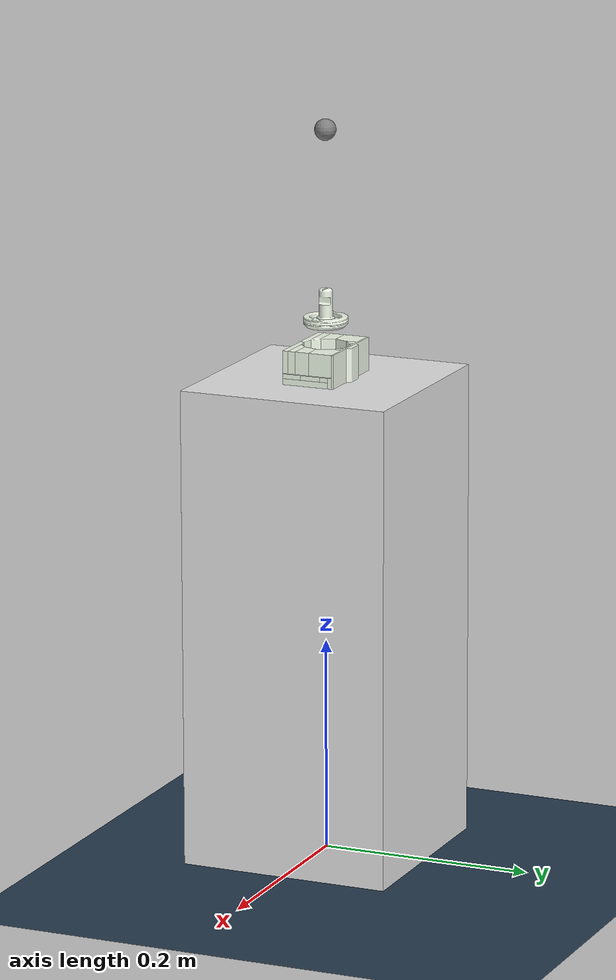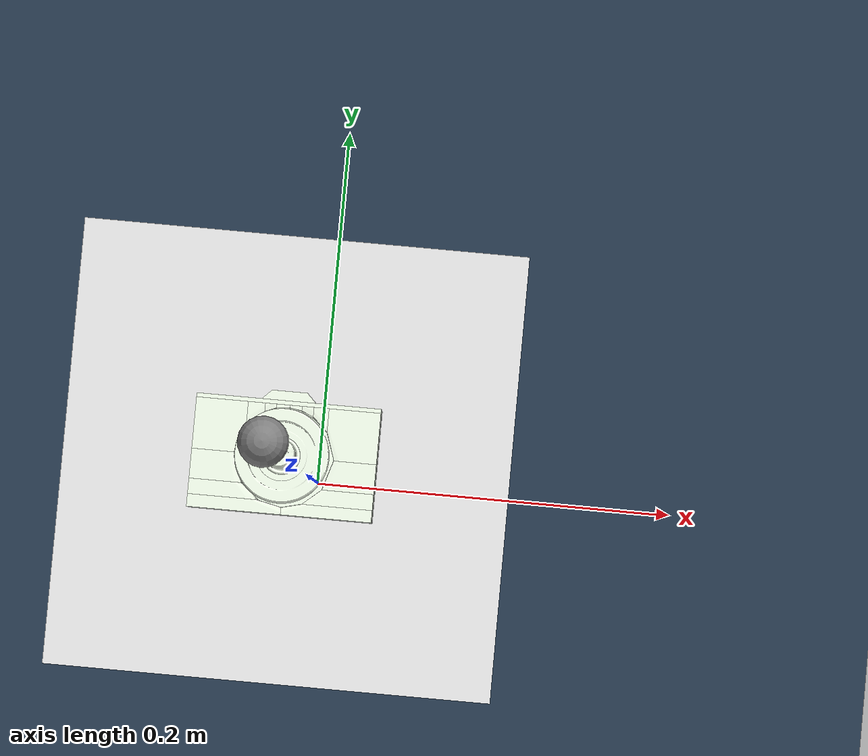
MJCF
<mujoco>

    <compiler angle="radian" inertiafromgeom="true"/>

    <option cone="elliptic" timestep="0.0001">
        <flag gravity="enable" override="disable" refsafe="disable"/>
    </option>

    <default>
        <joint armature="0.004" damping="1" limited="true"/>
        <geom friction=".8 .1 .01" density="300" margin="0.002" condim="1" contype="0" conaffinity="0"/>
    </default>

    <asset>
        <texture name="texplane" type="2d" builtin="checker" rgb1=".2 .3 .4" rgb2=".1 0.15 0.2" width="512" height="512"/>
        <material name="MatGnd" reflectance="0.5" texture="texplane" texrepeat="1 1" texuniform="true"/>

        <!-- BASE -->
        <mesh name="mesh_00" file="stl/mesh/00.stl" scale="0.001 0.001 0.001"/>
        <mesh name="mesh_01" file="stl/mesh/01.stl" scale="0.001 0.001 0.001"/>
        <mesh name="mesh_02" file="stl/mesh/02.stl" scale="0.001 0.001 0.001"/>
        <mesh name="mesh_03" file="stl/mesh/03.stl" scale="0.001 0.001 0.001"/>
        <mesh name="mesh_04" file="stl/mesh/04.stl" scale="0.001 0.001 0.001"/>
        <mesh name="mesh_05" file="stl/mesh/05.stl" scale="0.001 0.001 0.001"/>
        <mesh name="mesh_06" file="stl/mesh/06.stl" scale="0.001 0.001 0.001"/>
        <mesh name="mesh_07" file="stl/mesh/07.stl" scale="0.001 0.001 0.001"/>
        <mesh name="mesh_08" file="stl/mesh/08.stl" scale="0.001 0.001 0.001"/>
        <mesh name="mesh_09" file="stl/mesh/09.stl" scale="0.001 0.001 0.001"/>
        <mesh name="mesh_10" file="stl/mesh/10.stl" scale="0.001 0.001 0.001"/>
        <mesh name="mesh_11" file="stl/mesh/11.stl" scale="0.001 0.001 0.001"/>
        <mesh name="mesh_12" file="stl/mesh/12.stl" scale="0.001 0.001 0.001"/>
        <mesh name="mesh_13" file="stl/mesh/13.stl" scale="0.001 0.001 0.001"/>
        <mesh name="mesh_14" file="stl/mesh/14.stl" scale="0.001 0.001 0.001"/>
        <mesh name="mesh_15" file="stl/mesh/15.stl" scale="0.001 0.001 0.001"/>
        <mesh name="mesh_16" file="stl/mesh/16.stl" scale="0.001 0.001 0.001"/>
        <mesh name="mesh_17" file="stl/mesh/17.stl" scale="0.001 0.001 0.001"/>
        <mesh name="mesh_18" file="stl/mesh/18.stl" scale="0.001 0.001 0.001"/>
        <mesh name="mesh_19" file="stl/mesh/19.stl" scale="0.001 0.001 0.001"/>
        <mesh name="mesh_20" file="stl/mesh/20.stl" scale="0.001 0.001 0.001"/>
        <mesh name="mesh_21" file="stl/mesh/21.stl" scale="0.001 0.001 0.001"/>
        <mesh name="mesh_22" file="stl/mesh/22.stl" scale="0.001 0.001 0.001"/>
        <mesh name="mesh_23" file="stl/mesh/23.stl" scale="0.001 0.001 0.001"/>
        <mesh name="mesh_24" file="stl/mesh/24.stl" scale="0.001 0.001 0.001"/>
        <mesh name="mesh_25" file="stl/mesh/25.stl" scale="0.001 0.001 0.001"/>
        <mesh name="mesh_26" file="stl/mesh/26.stl" scale="0.001 0.001 0.001"/>

        <!-- INSERT -->
        <mesh name="insert" file="stl/insert.stl" scale='0.00092 0.00092 0.001'/>

    </asset>

    <visual>
		<scale framewidth="0.05" framelength="0.08" jointwidth="0.05" jointlength="0.08" actuatorwidth="0.05" actuatorlength="0.08" forcewidth="0.01" contactwidth="0.01"/>
	</visual>

    <default>
        <default class="insert">
                <default class="visual">
                <geom type="mesh" rgba=".95 .99 .92 1" mass="0"/>
                </default>

            <default class="collision">
                <geom type="mesh" rgba=".5 .6 .7 1"/>
            </default>
        </default>
    </default>

    <worldbody>
        <light pos="0 0 1000" castshadow="true"/>

        <!-- FLOOR -->
        <geom name="ground" pos="0 0 0" size="5 5 10" material="MatGnd" type="plane" contype="4" conaffinity="1"/>

        <!-- TABLE -->
        <geom name="wrk_table" pos="0 0 0.225" type="box" mass="90" size=".1 .1 .225" rgba="0.9 0.9 0.9 1" contype="4" conaffinity="1"/>

        <!--  BASE  -->
		<body name="base" pos="0 0 .45">
            <site name="base_site" size="0.002" pos="0 0 0.0094" rgba="0.9529411765 0.8 0.03529411765 0.5"/>

            <geom pos="0 0 0" class="visual" mesh="mesh_00" condim="4" contype="4" conaffinity="4"/>
            <geom pos="0 0 0" class="visual" mesh="mesh_01" condim="4" contype="4" conaffinity="4"/>
            <geom pos="0 0 0" class="visual" mesh="mesh_02" condim="4" contype="4" conaffinity="4" mass="1"/>
            <geom pos="0 0 0" class="visual" mesh="mesh_03" condim="4" contype="4" conaffinity="4"/>
            <geom pos="0 0 0" class="visual" mesh="mesh_04" condim="4" contype="4" conaffinity="4"/>
            <geom pos="0 0 0" class="visual" mesh="mesh_05" condim="4" contype="4" conaffinity="4"/>
            <geom pos="0 0 0" class="visual" mesh="mesh_06" condim="4" contype="4" conaffinity="4"/>
            <geom pos="0 0 0" class="visual" mesh="mesh_07" condim="4" contype="4" conaffinity="4"/>
            <geom pos="0 0 0" class="visual" mesh="mesh_08" condim="4" contype="4" conaffinity="4"/>
            <geom pos="0 0 0" class="visual" mesh="mesh_09" condim="4" contype="4" conaffinity="4"/>
            <geom pos="0 0 0" class="visual" mesh="mesh_10" condim="4" contype="4" conaffinity="4"/>
            <geom pos="0 0 0" class="visual" mesh="mesh_11" condim="4" contype="4" conaffinity="4"/>
            <geom pos="0 0 0" class="visual" mesh="mesh_12" condim="4" contype="4" conaffinity="4"/>
            <geom pos="0 0 0" class="visual" mesh="mesh_13" condim="4" contype="4" conaffinity="4"/>
            <geom pos="0 0 0" class="visual" mesh="mesh_14" condim="4" contype="4" conaffinity="4"/>
            <geom pos="0 0 0" class="visual" mesh="mesh_15" condim="4" contype="4" conaffinity="4"/>
            <geom pos="0 0 0" class="visual" mesh="mesh_16" condim="4" contype="4" conaffinity="4"/>
            <geom pos="0 0 0" class="visual" mesh="mesh_17" condim="4" contype="4" conaffinity="4"/>
            <geom pos="0 0 0" class="visual" mesh="mesh_18" condim="4" contype="4" conaffinity="4"/>
            <geom pos="0 0 0" class="visual" mesh="mesh_19" condim="4" contype="4" conaffinity="4"/>
            <geom pos="0 0 0" class="visual" mesh="mesh_20" condim="4" contype="4" conaffinity="4"/>
            <geom pos="0 0 0" class="visual" mesh="mesh_21" condim="4" contype="4" conaffinity="4"/>
            <geom pos="0 0 0" class="visual" mesh="mesh_22" condim="4" contype="4" conaffinity="4"/>
            <geom pos="0 0 0" class="visual" mesh="mesh_23" condim="4" contype="4" conaffinity="4"/>
            <geom pos="0 0 0" class="visual" mesh="mesh_24" condim="4" contype="4" conaffinity="4"/>
            <geom pos="0 0 0" class="visual" mesh="mesh_25" condim="4" contype="4" conaffinity="4"/>
            <geom pos="0 0 0" class="visual" mesh="mesh_26" condim="4" contype="4" conaffinity="4"/>

 		</body>

        <!-- EE -->
        <body name="insert" pos="0 0 0.68" euler="3.14159265359 0 0">

            <site name="ee_site" pos="0 0 0" size="0.01, 0.01, 0.01" euler="0 0 -1.57"/>

            <joint name="insert_x" pos="0 0 0" type="slide" axis="1 0 0" damping="1500" range="-1 1"/>
            <joint name="insert_y" pos="0 0 0" type="slide" axis="0 1 0" damping="1000" range="-1 1"/>
            <joint name="insert_z" pos="0 0 0" type="slide" axis="0 0 1" damping="1000" range="-1 1"/>

            <joint name="insert_ball_1" pos="0 0 0" type="hinge" axis="1 0 0" damping="1.5" range="-1 1"/>
            <joint name="insert_ball_2" pos="0 0 0" type="hinge" axis="0 1 0" damping="1.5" range="-1 1"/>
            <joint name="insert_ball_3" pos="0 0 0" type="hinge" axis="0 0 1" damping="1.5" range="-1 1"/>

            <!-- COMPONENT -->
            <body name="piston" pos="0 0 0.147">
                <geom class="visual" mesh="insert" condim="6" conaffinity="4" contype="4" mass="0.3"/>

                <site name="insert_site" size="0.002" pos="0 0 0.035" rgba="0.9529411765 0.8 0.03529411765 1"/>
            </body>

        </body>

    </worldbody>

    <actuator>

        <position name="position_x" joint="insert_x" gear="10" kp="1500" forcerange="-30 30" ctrllimited="true" ctrlrange="-1 1"/>
        <position name="position_y" joint="insert_y" gear="10" kp="100" forcerange="-30 30" ctrllimited="true" ctrlrange="-1 1"/>
        <position name="position_z" joint="insert_z" gear="10" kp="100" forcerange="-30 30" ctrllimited="true" ctrlrange="-1 1"/>

        <position name="ball_1" joint="insert_ball_1" gear="1" kp="100" forcerange="-100 100" ctrllimited="true" ctrlrange="-1 1"/>
        <position name="ball_2" joint="insert_ball_2" gear="1" kp="100" forcerange="-100 100" ctrllimited="true" ctrlrange="-1 1"/>
        <position name="ball_3" joint="insert_ball_3" gear="1" kp="100" forcerange="-100 100" ctrllimited="true" ctrlrange="-1 1"/>

    </actuator>

    <sensor>
        <force name="ee_force" site="ee_site"/>
        <torque name="ee_torque" site="ee_site"/>
    </sensor>

</mujoco>
